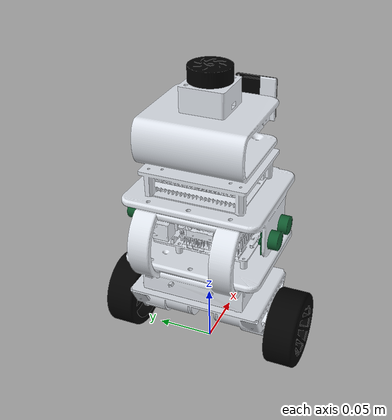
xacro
<?xml version="1.0" encoding="UTF-8"?>

<robot name="pivot" xmlns:xacro="http://www.ros.org/wiki/xacro">

  <xacro:include filename="$(find pivot_description)/urdf/pivot_gazebo.xacro"/>
  <xacro:include filename="$(find pivot_description)/urdf/pivot_sensors.xacro"/>
  <xacro:include filename="$(find pivot_description)/urdf/pivot_control.xacro"/>

  <link name="base_footprint"/>
<!-- base link n joint-->

    <link name="base_link">

    <visual>
      <origin xyz="0 0 0" rpy="0 0 1.5708" />
      <geometry>
        <mesh filename="package://pivot_description/meshes/base_link.stl" />
      </geometry>
     <material name="chrome">
        <color rgba="0.88 0.90 0.93 1.0"/>
     </material>
    </visual>

        <inertial>
      <origin xyz="0 0 0.0583" rpy="0 0 0"/>
      <mass value="1.225"/>
      <inertia ixx="0.00699" iyy="0.00657" izz="0.00227"
               ixy="0" ixz="0" iyz="0"/>
    </inertial>

    <collision>
  <origin xyz="0 0 0.0895" rpy="0 0 0" />
<geometry>
  <box size="0.14128 0.120 0.217"/>
</geometry>
</collision>

  </link>

  <joint name="base_joint" type="fixed">
    <parent link="base_footprint"/>
    <child link="base_link" />
    <origin xyz="0 0 0.064" rpy="0 0 0"/>
  </joint>

<!-- right wheel n joint-->

  <link name="right_wheel_link">

    <visual>
      <origin xyz="0 0 0" rpy="0 0 1.5708" />
      <geometry>
        <mesh filename="package://pivot_description/meshes/right_wheel_link.stl" />
      </geometry>
           <material name="black">
        <color rgba="0.0 0.0 0.0 1.0"/>
     </material>
    </visual>

        <inertial>
      <origin xyz="0 0 0" rpy="0 0 0"/>
      <mass value="0.0988"/>
      <inertia ixx="3.74e-5" iyy="6.60e-5" izz="3.74e-5"
               ixy="0" ixz="0" iyz="0"/>
    </inertial>

    <collision>
      <origin xyz="0 0 0" rpy="1.5708 0 0" />
      <geometry>
        <cylinder radius="0.0335" length="0.027"/>
      </geometry>
    </collision>

  </link>

  <joint name="right_wheel_joint" type="continuous">
    <origin xyz="0 -0.079 -0.0305" rpy="0 0 0" />
    <parent link="base_link" />
    <child link="right_wheel_link" />
    <axis xyz="0 1 0" />
        <dynamics damping="0.01" friction="0.001"/>
  </joint>

  <!-- left wheel n joint-->

  <link
    name="left_wheel_link">

    <visual>
      <origin xyz="0 0 0" rpy="0 0 1.5708" />
      <geometry>
        <mesh filename="package://pivot_description/meshes/left_wheel_link.stl" />
      </geometry>
                 <material name="black">
        <color rgba="0.0 0.0 0.0 1.0"/>
     </material>
    </visual>

        <inertial>
      <origin xyz="0 0 0" rpy="0 0 0"/>
      <mass value="0.0988"/>
      <inertia ixx="3.74e-5" iyy="6.60e-5" izz="3.74e-5"
               ixy="0" ixz="0" iyz="0"/>
    </inertial>

    <collision>
      <origin xyz="0 0 0" rpy="1.5708 0 0" />
      <geometry>
        <cylinder radius="0.0335" length="0.027"/>
      </geometry>
    </collision>

  </link>

  <joint name="left_wheel_joint" type="continuous">
    <origin xyz="0 0.079 -0.0305" rpy="0 0 0" />
    <parent link="base_link" />
    <child link="left_wheel_link" />
    <axis xyz="0 1 0" />
        <dynamics damping="0.01" friction="0.001"/>
  </joint>

     <!-- imu n joint-->

  <link name="imu_link">
    <inertial>
      <origin xyz="0 0 0" rpy="0 0 0"/>
      <mass value="1e-5"/>
      <inertia ixx="1e-9" iyy="1e-9" izz="1e-9"
               ixy="0" ixz="0" iyz="0"/>
    </inertial>
  </link>

  <joint name="imu_joint" type="fixed">
    <origin xyz="0 0 0" rpy="0 0 0" />
    <parent link="base_link" />
    <child link="imu_link" />
  </joint>

  <!-- lidar n joint-->

  <link
    name="lidar_link">

    <visual>
      <origin xyz="0 0 0" rpy="0 0 1.5708" />
      <geometry>
        <mesh filename="package://pivot_description/meshes/lidar_link.stl" />
      </geometry>
                 <material name="black">
        <color rgba="0.0 0.0 0.0 1.0"/>
     </material>
    </visual>

        <inertial>
      <origin xyz="0 0 0" rpy="0 0 0"/>
      <mass value="1e-5"/>
      <inertia ixx="1e-9" iyy="1e-9" izz="1e-9"
               ixy="0" ixz="0" iyz="0"/>
    </inertial>
  </link>

  <joint name="lidar_joint" type="fixed">
    <origin xyz="0.00079 -0.0014 0.18515" rpy="0 0 0" />
    <parent link="base_link" />
    <child link="lidar_link" />
  </joint>

 <!-- camera n joint-->

  <link
    name="camera_link">

    <visual>
      <origin xyz="0 0 0" rpy="0 0 1.5708" />
      <geometry>
        <mesh filename="package://pivot_description/meshes/camera_link.stl" />
      </geometry>
                 <material name="black">
        <color rgba="0.0 0.0 0.0 1.0"/>
     </material>
    </visual>

        <inertial>
      <origin xyz="0 0 0" rpy="0 0 0"/>
      <mass value="1e-5"/>
      <inertia ixx="1e-9" iyy="1e-9" izz="1e-9"
               ixy="0" ixz="0" iyz="0"/>
    </inertial>

  </link>

  <joint name="camera_joint" type="fixed">
    <origin xyz="0.11826 -0.0045 0.13872" rpy="0 0 0" />
    <parent link="base_link" />
    <child link="camera_link" />
  </joint>

  <!-- front_sonic n joint-->

  <link
    name="ultrasonic_front_link">

    <visual>
      <origin xyz="0 0 0" rpy="0 0 1.5708" />
      <geometry>
        <mesh filename="package://pivot_description/meshes/front_sonic_link.stl" />
      </geometry>
                 <material name="pcb_green">
        <color rgba="0.06 0.35 0.18 1.0"/>
     </material>
    </visual>

        <inertial>
      <origin xyz="0 0 0" rpy="0 0 0"/>
      <mass value="1e-5"/>
      <inertia ixx="1e-9" iyy="1e-9" izz="1e-9"
               ixy="0" ixz="0" iyz="0"/>
    </inertial>

  </link>

  <joint name="ultrasonic_front_joint" type="fixed">
    <origin xyz="0.06698 0 0.0645" rpy="0 0 0" />
    <parent link="base_link" />
    <child link="ultrasonic_front_link" />
  </joint>

  <!-- right_sonic n joint-->

  <link
    name="ultrasonic_right_link">

    <visual>
      <origin xyz="0 0 0" rpy="0 0 1.5708" />
      <geometry>
        <mesh filename="package://pivot_description/meshes/right_sonic_link.stl" />
      </geometry>
                 <material name="pcb_green">
        <color rgba="0.06 0.35 0.18 1.0"/>
     </material>
    </visual>

        <inertial>
      <origin xyz="0 0 0" rpy="0 0 0"/>
      <mass value="1e-5"/>
      <inertia ixx="1e-9" iyy="1e-9" izz="1e-9"
               ixy="0" ixz="0" iyz="0"/>
    </inertial>

  </link>

  <joint name="ultrasonic_right_joint" type="fixed">
    <origin xyz="0 -0.05245 0.0657" rpy="0 0 0" />
    <parent link="base_link" />
    <child link="ultrasonic_right_link" />
  </joint>

  <!-- left_sonic n joint-->

  <link
    name="ultrasonic_left_link">

    <visual>
      <origin xyz="0 0 0" rpy="0 0 1.5708" />
      <geometry>
        <mesh filename="package://pivot_description/meshes/left_sonic_link.stl" />
      </geometry>
                 <material name="pcb_green">
        <color rgba="0.06 0.35 0.18 1.0"/>
     </material>
    </visual>

        <inertial>
      <origin xyz="0 0 0" rpy="0 0 0"/>
      <mass value="1e-5"/>
      <inertia ixx="1e-9" iyy="1e-9" izz="1e-9"
               ixy="0" ixz="0" iyz="0"/>
    </inertial>

  </link>

  <joint name="ultrasonic_left_joint" type="fixed">
    <origin xyz="0 0.05245 0.0657" rpy="0 0 0" />
    <parent link="base_link" />
    <child link="ultrasonic_left_link" />
  </joint>

  </robot>
